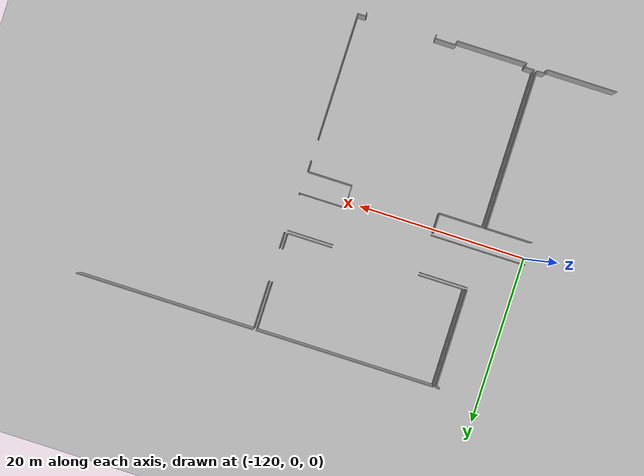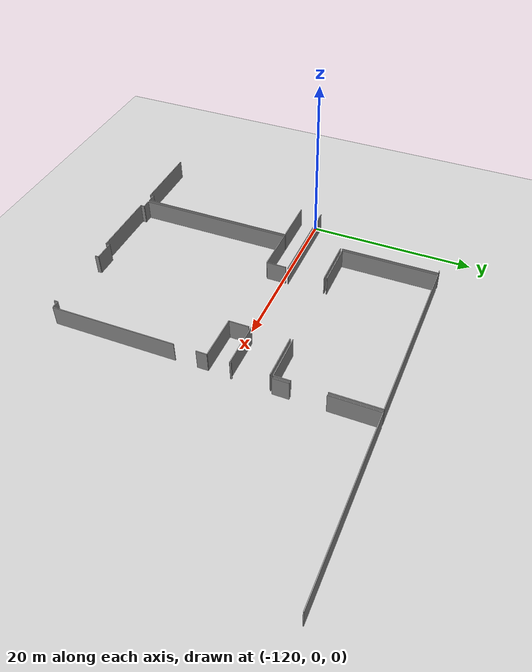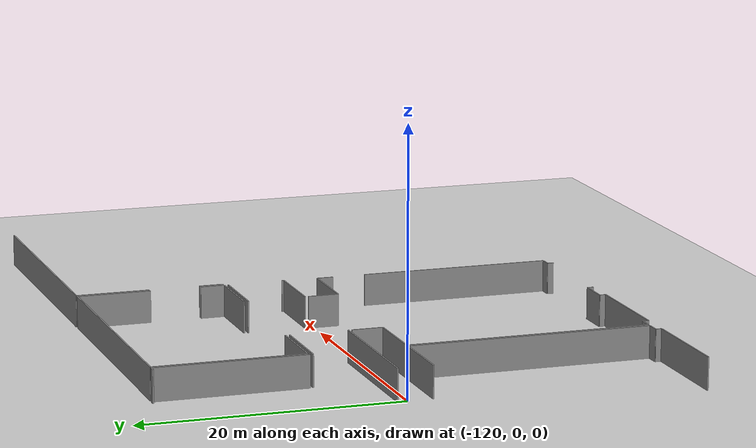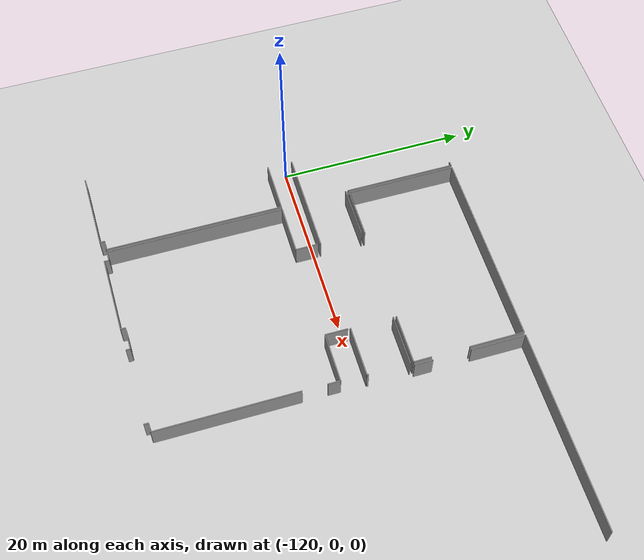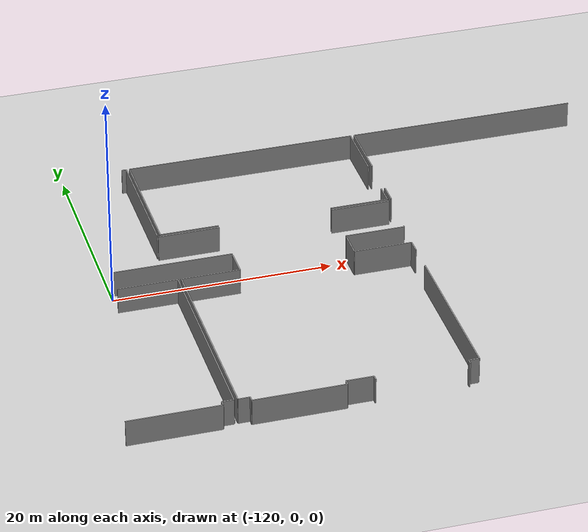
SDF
<sdf version="1.6">
 <world name="default">
  <model name="ground_plane">
   <static>1</static>
   <link name="link">
    <collision name="collision">
     <geometry><plane><normal>0 0 1</normal><size>100 100</size></plane></geometry>
     <surface><friction><ode><mu>100</mu><mu2>50</mu2></ode></friction></surface>
    </collision>
    <visual name="visual">
     <cast_shadows>0</cast_shadows>
     <geometry><plane><normal>0 0 1</normal><size>100 100</size></plane></geometry>
     <material>
      <script><uri>file://media/materials/scripts/gazebo.material</uri><name>Gazebo/Grey</name></script>
     </material>
    </visual>
   </link>
  </model>
  <model name="50037764_PLAN2">
   <static>1</static>
   <link name="Wall_7">
    <collision name="Wall_7_Collision">
     <geometry><box><size>0.447912959479 0.1 2.5</size></box></geometry>
     <pose>0.22395647974 0 1.25 0 0 0</pose>
    </collision>
    <visual name="Wall_7_Visual">
     <pose>0.22395647974 0 1.25 0 0 0</pose>
     <geometry><box><size>0.447912959479 0.1 2.5</size></box></geometry>
     <material>
      <script><uri>file://media/materials/scripts/gazebo.material</uri><name>Gazebo/Grey</name></script>
      <ambient>1 1 1 1</ambient>
     </material>
    </visual>
    <pose>20.7813818699 -4.12232446998 0 0 0 0.0</pose>
   </link>
   <link name="Wall_8">
    <collision name="Wall_8_Collision">
     <geometry><box><size>11.7359086198 0.1 2.5</size></box></geometry>
     <pose>5.86795430989 0 1.25 0 0 0</pose>
    </collision>
    <visual name="Wall_8_Visual">
     <pose>5.86795430989 0 1.25 0 0 0</pose>
     <geometry><box><size>11.7359086198 0.1 2.5</size></box></geometry>
     <material>
      <script><uri>file://media/materials/scripts/gazebo.material</uri><name>Gazebo/Grey</name></script>
      <ambient>1 1 1 1</ambient>
     </material>
    </visual>
    <pose>21.2292948294 -4.12232446998 0 0 0 -1.56992990164</pose>
   </link>
   <link name="Wall_9">
    <collision name="Wall_9_Collision">
     <geometry><box><size>5.38512379887 0.1 2.5</size></box></geometry>
     <pose>2.69256189944 0 1.25 0 0 0</pose>
    </collision>
    <visual name="Wall_9_Visual">
     <pose>2.69256189944 0 1.25 0 0 0</pose>
     <geometry><box><size>5.38512379887 0.1 2.5</size></box></geometry>
     <material>
      <script><uri>file://media/materials/scripts/gazebo.material</uri><name>Gazebo/Grey</name></script>
      <ambient>1 1 1 1</ambient>
     </material>
    </visual>
    <pose>42.8457979562 -15.7668158015 0 0 0 3.14159265359</pose>
   </link>
   <link name="Wall_10">
    <collision name="Wall_10_Collision">
     <geometry><box><size>5.39605470537 0.1 2.5</size></box></geometry>
     <pose>2.69802735269 0 1.25 0 0 0</pose>
    </collision>
    <visual name="Wall_10_Visual">
     <pose>2.69802735269 0 1.25 0 0 0</pose>
     <geometry><box><size>5.39605470537 0.1 2.5</size></box></geometry>
     <material>
      <script><uri>file://media/materials/scripts/gazebo.material</uri><name>Gazebo/Grey</name></script>
      <ambient>1 1 1 1</ambient>
     </material>
    </visual>
    <pose>26.9283644313 -15.7668158015 0 0 0 3.14159265359</pose>
   </link>
   <link name="Wall_11">
    <collision name="Wall_11_Collision">
     <geometry><box><size>11.6444913315 0.1 2.5</size></box></geometry>
     <pose>5.82224566577 0 1.25 0 0 0</pose>
    </collision>
    <visual name="Wall_11_Visual">
     <pose>5.82224566577 0 1.25 0 0 0</pose>
     <geometry><box><size>11.6444913315 0.1 2.5</size></box></geometry>
     <material>
      <script><uri>file://media/materials/scripts/gazebo.material</uri><name>Gazebo/Grey</name></script>
      <ambient>1 1 1 1</ambient>
     </material>
    </visual>
    <pose>21.532309726 -15.7668158015 0 0 0 1.57079632679</pose>
   </link>
   <link name="Wall_12">
    <collision name="Wall_12_Collision">
     <geometry><box><size>21.299252631 0.1 2.5</size></box></geometry>
     <pose>10.6496263155 0 1.25 0 0 0</pose>
    </collision>
    <visual name="Wall_12_Visual">
     <pose>10.6496263155 0 1.25 0 0 0</pose>
     <geometry><box><size>21.299252631 0.1 2.5</size></box></geometry>
     <material>
      <script><uri>file://media/materials/scripts/gazebo.material</uri><name>Gazebo/Grey</name></script>
      <ambient>1 1 1 1</ambient>
     </material>
    </visual>
    <pose>21.532309726 -4.12232446998 0 0 0 0.0</pose>
   </link>
   <link name="Wall_13">
    <collision name="Wall_13_Collision">
     <geometry><box><size>5.75115664243 0.1 2.5</size></box></geometry>
     <pose>2.87557832122 0 1.25 0 0 0</pose>
    </collision>
    <visual name="Wall_13_Visual">
     <pose>2.87557832122 0 1.25 0 0 0</pose>
     <geometry><box><size>5.75115664243 0.1 2.5</size></box></geometry>
     <material>
      <script><uri>file://media/materials/scripts/gazebo.material</uri><name>Gazebo/Grey</name></script>
      <ambient>1 1 1 1</ambient>
     </material>
    </visual>
    <pose>42.831562357 -4.12232446998 0 0 0 -1.57079632679</pose>
   </link>
   <link name="Wall_14">
    <collision name="Wall_14_Collision">
     <geometry><box><size>1.90637782522 0.1 2.5</size></box></geometry>
     <pose>0.953188912609 0 1.25 0 0 0</pose>
    </collision>
    <visual name="Wall_14_Visual">
     <pose>0.953188912609 0 1.25 0 0 0</pose>
     <geometry><box><size>1.90637782522 0.1 2.5</size></box></geometry>
     <material>
      <script><uri>file://media/materials/scripts/gazebo.material</uri><name>Gazebo/Grey</name></script>
      <ambient>1 1 1 1</ambient>
     </material>
    </visual>
    <pose>42.831562357 -13.8604911282 0 0 0 -1.56332890282</pose>
   </link>
   <link name="Wall_15">
    <collision name="Wall_15_Collision">
     <geometry><box><size>5.45477655193 0.1 2.5</size></box></geometry>
     <pose>2.72738827597 0 1.25 0 0 0</pose>
    </collision>
    <visual name="Wall_15_Visual">
     <pose>2.72738827597 0 1.25 0 0 0</pose>
     <geometry><box><size>5.45477655193 0.1 2.5</size></box></geometry>
     <material>
      <script><uri>file://media/materials/scripts/gazebo.material</uri><name>Gazebo/Grey</name></script>
      <ambient>1 1 1 1</ambient>
     </material>
    </visual>
    <pose>42.8989272459 -20.595861508 0 0 0 3.14159265359</pose>
   </link>
   <link name="Wall_16">
    <collision name="Wall_16_Collision">
     <geometry><box><size>11.1444913315 0.1 2.5</size></box></geometry>
     <pose>5.57224566577 0 1.25 0 0 0</pose>
    </collision>
    <visual name="Wall_16_Visual">
     <pose>5.57224566577 0 1.25 0 0 0</pose>
     <geometry><box><size>11.1444913315 0.1 2.5</size></box></geometry>
     <material>
      <script><uri>file://media/materials/scripts/gazebo.material</uri><name>Gazebo/Grey</name></script>
      <ambient>1 1 1 1</ambient>
     </material>
    </visual>
    <pose>26.9309065026 -20.595861508 0 0 0 3.14159265359</pose>
   </link>
   <link name="Wall_22">
    <collision name="Wall_22_Collision">
     <geometry><box><size>5.65737963292 0.1 2.5</size></box></geometry>
     <pose>2.82868981646 0 1.25 0 0 0</pose>
    </collision>
    <visual name="Wall_22_Visual">
     <pose>2.82868981646 0 1.25 0 0 0</pose>
     <geometry><box><size>5.65737963292 0.1 2.5</size></box></geometry>
     <material>
      <script><uri>file://media/materials/scripts/gazebo.material</uri><name>Gazebo/Grey</name></script>
      <ambient>1 1 1 1</ambient>
     </material>
    </visual>
    <pose>21.2623417561 -16.0900910062 0 0 0 0.0</pose>
   </link>
   <link name="Wall_23">
    <collision name="Wall_23_Collision">
     <geometry><box><size>5.44892978799 0.1 2.5</size></box></geometry>
     <pose>2.724464894 0 1.25 0 0 0</pose>
    </collision>
    <visual name="Wall_23_Visual">
     <pose>2.724464894 0 1.25 0 0 0</pose>
     <geometry><box><size>5.44892978799 0.1 2.5</size></box></geometry>
     <material>
      <script><uri>file://media/materials/scripts/gazebo.material</uri><name>Gazebo/Grey</name></script>
      <ambient>1 1 1 1</ambient>
     </material>
    </visual>
    <pose>37.4494890437 -16.0900910062 0 0 0 0.0</pose>
   </link>
   <link name="Wall_24">
    <collision name="Wall_24_Collision">
     <geometry><box><size>0.182013013699 0.1 2.5</size></box></geometry>
     <pose>0.0910065068497 0 1.25 0 0 0</pose>
    </collision>
    <visual name="Wall_24_Visual">
     <pose>0.0910065068497 0 1.25 0 0 0</pose>
     <geometry><box><size>0.182013013699 0.1 2.5</size></box></geometry>
     <material>
      <script><uri>file://media/materials/scripts/gazebo.material</uri><name>Gazebo/Grey</name></script>
      <ambient>1 1 1 1</ambient>
     </material>
    </visual>
    <pose>42.8984188317 -20.4138492043 0 0 0 -1.56800303797</pose>
   </link>
   <link name="Wall_25">
    <collision name="Wall_25_Collision">
     <geometry><box><size>1.05063805989 0.1 2.5</size></box></geometry>
     <pose>0.525319029946 0 1.25 0 0 0</pose>
    </collision>
    <visual name="Wall_25_Visual">
     <pose>0.525319029946 0 1.25 0 0 0</pose>
     <geometry><box><size>1.05063805989 0.1 2.5</size></box></geometry>
     <material>
      <script><uri>file://media/materials/scripts/gazebo.material</uri><name>Gazebo/Grey</name></script>
      <ambient>1 1 1 1</ambient>
     </material>
    </visual>
    <pose>21.2394631145 -42.151354924 0 0 0 3.14159265359</pose>
   </link>
   <link name="Wall_26">
    <collision name="Wall_26_Collision">
     <geometry><box><size>0.471808429508 0.1 2.5</size></box></geometry>
     <pose>0.235904214754 0 1.25 0 0 0</pose>
    </collision>
    <visual name="Wall_26_Visual">
     <pose>0.235904214754 0 1.25 0 0 0</pose>
     <geometry><box><size>0.471808429508 0.1 2.5</size></box></geometry>
     <material>
      <script><uri>file://media/materials/scripts/gazebo.material</uri><name>Gazebo/Grey</name></script>
      <ambient>1 1 1 1</ambient>
     </material>
    </visual>
    <pose>20.1888250547 -42.151354924 0 0 0 -1.57079632679</pose>
   </link>
   <link name="Wall_27">
    <collision name="Wall_27_Collision">
     <geometry><box><size>8.38959784432 0.1 2.5</size></box></geometry>
     <pose>4.19479892216 0 1.25 0 0 0</pose>
    </collision>
    <visual name="Wall_27_Visual">
     <pose>4.19479892216 0 1.25 0 0 0</pose>
     <geometry><box><size>8.38959784432 0.1 2.5</size></box></geometry>
     <material>
      <script><uri>file://media/materials/scripts/gazebo.material</uri><name>Gazebo/Grey</name></script>
      <ambient>1 1 1 1</ambient>
     </material>
    </visual>
    <pose>20.1888250547 -42.6231633535 0 0 0 3.14159265359</pose>
   </link>
   <link name="Wall_34">
    <collision name="Wall_34_Collision">
     <geometry><box><size>5.47302862372 0.1 2.5</size></box></geometry>
     <pose>2.73651431186 0 1.25 0 0 0</pose>
    </collision>
    <visual name="Wall_34_Visual">
     <pose>2.73651431186 0 1.25 0 0 0</pose>
     <geometry><box><size>5.47302862372 0.1 2.5</size></box></geometry>
     <material>
      <script><uri>file://media/materials/scripts/gazebo.material</uri><name>Gazebo/Grey</name></script>
      <ambient>1 1 1 1</ambient>
     </material>
    </visual>
    <pose>15.7844831969 -23.2703747013 0 0 0 0.0</pose>
   </link>
   <link name="Wall_35">
    <collision name="Wall_35_Collision">
     <geometry><box><size>18.8809888492 0.1 2.5</size></box></geometry>
     <pose>9.44049442462 0 1.25 0 0 0</pose>
    </collision>
    <visual name="Wall_35_Visual">
     <pose>9.44049442462 0 1.25 0 0 0</pose>
     <geometry><box><size>18.8809888492 0.1 2.5</size></box></geometry>
     <material>
      <script><uri>file://media/materials/scripts/gazebo.material</uri><name>Gazebo/Grey</name></script>
      <ambient>1 1 1 1</ambient>
     </material>
    </visual>
    <pose>21.2575118206 -23.2703747013 0 0 0 -1.57175224648</pose>
   </link>
   <link name="Wall_53">
    <collision name="Wall_53_Collision">
     <geometry><box><size>0.954547765519 0.1 2.5</size></box></geometry>
     <pose>0.47727388276 0 1.25 0 0 0</pose>
    </collision>
    <visual name="Wall_53_Visual">
     <pose>0.47727388276 0 1.25 0 0 0</pose>
     <geometry><box><size>0.954547765519 0.1 2.5</size></box></geometry>
     <material>
      <script><uri>file://media/materials/scripts/gazebo.material</uri><name>Gazebo/Grey</name></script>
      <ambient>1 1 1 1</ambient>
     </material>
    </visual>
    <pose>42.7791956886 -42.151354924 0 0 0 3.14159265359</pose>
   </link>
   <link name="Wall_54">
    <collision name="Wall_54_Collision">
     <geometry><box><size>0.468503736845 0.1 2.5</size></box></geometry>
     <pose>0.234251868422 0 1.25 0 0 0</pose>
    </collision>
    <visual name="Wall_54_Visual">
     <pose>0.234251868422 0 1.25 0 0 0</pose>
     <geometry><box><size>0.468503736845 0.1 2.5</size></box></geometry>
     <material>
      <script><uri>file://media/materials/scripts/gazebo.material</uri><name>Gazebo/Grey</name></script>
      <ambient>1 1 1 1</ambient>
     </material>
    </visual>
    <pose>41.8246479231 -42.151354924 0 0 0 -1.57079632679</pose>
   </link>
   <link name="Wall_55">
    <collision name="Wall_55_Collision">
     <geometry><box><size>0.472062636636 0.1 2.5</size></box></geometry>
     <pose>0.236031318318 0 1.25 0 0 0</pose>
    </collision>
    <visual name="Wall_55_Visual">
     <pose>0.236031318318 0 1.25 0 0 0</pose>
     <geometry><box><size>0.472062636636 0.1 2.5</size></box></geometry>
     <material>
      <script><uri>file://media/materials/scripts/gazebo.material</uri><name>Gazebo/Grey</name></script>
      <ambient>1 1 1 1</ambient>
     </material>
    </visual>
    <pose>33.4525903706 -42.6198586608 0 0 0 1.57079632679</pose>
   </link>
   <link name="Wall_56">
    <collision name="Wall_56_Collision">
     <geometry><box><size>2.47546901215 0.1 2.5</size></box></geometry>
     <pose>1.23773450608 0 1.25 0 0 0</pose>
    </collision>
    <visual name="Wall_56_Visual">
     <pose>1.23773450608 0 1.25 0 0 0</pose>
     <geometry><box><size>2.47546901215 0.1 2.5</size></box></geometry>
     <material>
      <script><uri>file://media/materials/scripts/gazebo.material</uri><name>Gazebo/Grey</name></script>
      <ambient>1 1 1 1</ambient>
     </material>
    </visual>
    <pose>33.4525903706 -42.1477960242 0 0 0 3.14159265359</pose>
   </link>
   <link name="Wall_57">
    <collision name="Wall_57_Collision">
     <geometry><box><size>0.489348721338 0.1 2.5</size></box></geometry>
     <pose>0.244674360669 0 1.25 0 0 0</pose>
    </collision>
    <visual name="Wall_57_Visual">
     <pose>0.244674360669 0 1.25 0 0 0</pose>
     <geometry><box><size>0.489348721338 0.1 2.5</size></box></geometry>
     <material>
      <script><uri>file://media/materials/scripts/gazebo.material</uri><name>Gazebo/Grey</name></script>
      <ambient>1 1 1 1</ambient>
     </material>
    </visual>
    <pose>30.9771213585 -42.1477960242 0 0 0 -1.57079632679</pose>
   </link>
   <link name="Wall_58">
    <collision name="Wall_58_Collision">
     <geometry><box><size>8.34155269714 0.1 2.5</size></box></geometry>
     <pose>4.17077634857 0 1.25 0 0 0</pose>
    </collision>
    <visual name="Wall_58_Visual">
     <pose>4.17077634857 0 1.25 0 0 0</pose>
     <geometry><box><size>8.34155269714 0.1 2.5</size></box></geometry>
     <material>
      <script><uri>file://media/materials/scripts/gazebo.material</uri><name>Gazebo/Grey</name></script>
      <ambient>1 1 1 1</ambient>
     </material>
    </visual>
    <pose>30.9771213585 -42.6371447455 0 0 0 3.14159265359</pose>
   </link>
   <link name="Wall_59">
    <collision name="Wall_59_Collision">
     <geometry><box><size>0.485789821547 0.1 2.5</size></box></geometry>
     <pose>0.242894910773 0 1.25 0 0 0</pose>
    </collision>
    <visual name="Wall_59_Visual">
     <pose>0.242894910773 0 1.25 0 0 0</pose>
     <geometry><box><size>0.485789821547 0.1 2.5</size></box></geometry>
     <material>
      <script><uri>file://media/materials/scripts/gazebo.material</uri><name>Gazebo/Grey</name></script>
      <ambient>1 1 1 1</ambient>
     </material>
    </visual>
    <pose>22.6355686613 -42.6371447455 0 0 0 1.57079632679</pose>
   </link>
   <link name="Wall_60">
    <collision name="Wall_60_Collision">
     <geometry><box><size>1.07199145864 0.1 2.5</size></box></geometry>
     <pose>0.53599572932 0 1.25 0 0 0</pose>
    </collision>
    <visual name="Wall_60_Visual">
     <pose>0.53599572932 0 1.25 0 0 0</pose>
     <geometry><box><size>1.07199145864 0.1 2.5</size></box></geometry>
     <material>
      <script><uri>file://media/materials/scripts/gazebo.material</uri><name>Gazebo/Grey</name></script>
      <ambient>1 1 1 1</ambient>
     </material>
    </visual>
    <pose>22.6355686613 -42.151354924 0 0 0 3.14159265359</pose>
   </link>
   <link name="Wall_61">
    <collision name="Wall_61_Collision">
     <geometry><box><size>18.879709187 0.1 2.5</size></box></geometry>
     <pose>9.43985459352 0 1.25 0 0 0</pose>
    </collision>
    <visual name="Wall_61_Visual">
     <pose>9.43985459352 0 1.25 0 0 0</pose>
     <geometry><box><size>18.879709187 0.1 2.5</size></box></geometry>
     <material>
      <script><uri>file://media/materials/scripts/gazebo.material</uri><name>Gazebo/Grey</name></script>
      <ambient>1 1 1 1</ambient>
     </material>
    </visual>
    <pose>21.5635772027 -42.151354924 0 0 0 1.57079632679</pose>
   </link>
   <link name="Wall_62">
    <collision name="Wall_62_Collision">
     <geometry><box><size>5.33097768061 0.1 2.5</size></box></geometry>
     <pose>2.66548884031 0 1.25 0 0 0</pose>
    </collision>
    <visual name="Wall_62_Visual">
     <pose>2.66548884031 0 1.25 0 0 0</pose>
     <geometry><box><size>5.33097768061 0.1 2.5</size></box></geometry>
     <material>
      <script><uri>file://media/materials/scripts/gazebo.material</uri><name>Gazebo/Grey</name></script>
      <ambient>1 1 1 1</ambient>
     </material>
    </visual>
    <pose>21.5635772027 -23.2716457369 0 0 0 0.0</pose>
   </link>
   <link name="Wall_63">
    <collision name="Wall_63_Collision">
     <geometry><box><size>2.40810412324 0.1 2.5</size></box></geometry>
     <pose>1.20405206162 0 1.25 0 0 0</pose>
    </collision>
    <visual name="Wall_63_Visual">
     <pose>1.20405206162 0 1.25 0 0 0</pose>
     <geometry><box><size>2.40810412324 0.1 2.5</size></box></geometry>
     <material>
      <script><uri>file://media/materials/scripts/gazebo.material</uri><name>Gazebo/Grey</name></script>
      <ambient>1 1 1 1</ambient>
     </material>
    </visual>
    <pose>26.8945548833 -23.2716457369 0 0 0 1.57079632679</pose>
   </link>
   <link name="Wall_64">
    <collision name="Wall_64_Collision">
     <geometry><box><size>2.39107224567 0.1 2.5</size></box></geometry>
     <pose>1.19553612283 0 1.25 0 0 0</pose>
    </collision>
    <visual name="Wall_64_Visual">
     <pose>1.19553612283 0 1.25 0 0 0</pose>
     <geometry><box><size>2.39107224567 0.1 2.5</size></box></geometry>
     <material>
      <script><uri>file://media/materials/scripts/gazebo.material</uri><name>Gazebo/Grey</name></script>
      <ambient>1 1 1 1</ambient>
     </material>
    </visual>
    <pose>37.4357618588 -20.8635416137 0 0 0 -1.57079632679</pose>
   </link>
   <link name="Wall_65">
    <collision name="Wall_65_Collision">
     <geometry><box><size>5.32462250241 0.1 2.5</size></box></geometry>
     <pose>2.66231125121 0 1.25 0 0 0</pose>
    </collision>
    <visual name="Wall_65_Visual">
     <pose>2.66231125121 0 1.25 0 0 0</pose>
     <geometry><box><size>5.32462250241 0.1 2.5</size></box></geometry>
     <material>
      <script><uri>file://media/materials/scripts/gazebo.material</uri><name>Gazebo/Grey</name></script>
      <ambient>1 1 1 1</ambient>
     </material>
    </visual>
    <pose>37.4357618588 -23.2546138594 0 0 0 0.0</pose>
   </link>
   <link name="Wall_66">
    <collision name="Wall_66_Collision">
     <geometry><box><size>1.28959276018 0.1 2.5</size></box></geometry>
     <pose>0.64479638009 0 1.25 0 0 0</pose>
    </collision>
    <visual name="Wall_66_Visual">
     <pose>0.64479638009 0 1.25 0 0 0</pose>
     <geometry><box><size>1.28959276018 0.1 2.5</size></box></geometry>
     <material>
      <script><uri>file://media/materials/scripts/gazebo.material</uri><name>Gazebo/Grey</name></script>
      <ambient>1 1 1 1</ambient>
     </material>
    </visual>
    <pose>42.7603843612 -23.2546138594 0 0 0 -1.57079632679</pose>
   </link>
   <link name="Wall_67">
    <collision name="Wall_67_Collision">
     <geometry><box><size>15.0071295895 0.1 2.5</size></box></geometry>
     <pose>7.50356479476 0 1.25 0 0 0</pose>
    </collision>
    <visual name="Wall_67_Visual">
     <pose>7.50356479476 0 1.25 0 0 0</pose>
     <geometry><box><size>15.0071295895 0.1 2.5</size></box></geometry>
     <material>
      <script><uri>file://media/materials/scripts/gazebo.material</uri><name>Gazebo/Grey</name></script>
      <ambient>1 1 1 1</ambient>
     </material>
    </visual>
    <pose>42.7603843612 -27.1442371244 0 0 0 -1.56954283376</pose>
   </link>
   <link name="Wall_76">
    <collision name="Wall_76_Collision">
     <geometry><box><size>1.9272967614 0.1 2.5</size></box></geometry>
     <pose>0.963648380701 0 1.25 0 0 0</pose>
    </collision>
    <visual name="Wall_76_Visual">
     <pose>0.963648380701 0 1.25 0 0 0</pose>
     <geometry><box><size>1.9272967614 0.1 2.5</size></box></geometry>
     <material>
      <script><uri>file://media/materials/scripts/gazebo.material</uri><name>Gazebo/Grey</name></script>
      <ambient>1 1 1 1</ambient>
     </material>
    </visual>
    <pose>43.1859270934 -15.7861355432 0 0 0 1.57079632679</pose>
   </link>
   <link name="Wall_77">
    <collision name="Wall_77_Collision">
     <geometry><box><size>5.75560526717 0.1 2.5</size></box></geometry>
     <pose>2.87780263359 0 1.25 0 0 0</pose>
    </collision>
    <visual name="Wall_77_Visual">
     <pose>2.87780263359 0 1.25 0 0 0</pose>
     <geometry><box><size>5.75560526717 0.1 2.5</size></box></geometry>
     <material>
      <script><uri>file://media/materials/scripts/gazebo.material</uri><name>Gazebo/Grey</name></script>
      <ambient>1 1 1 1</ambient>
     </material>
    </visual>
    <pose>43.1859270934 -9.86188926738 0 0 0 1.57079632679</pose>
   </link>
   <link name="Wall_78">
    <collision name="Wall_78_Collision">
     <geometry><box><size>21.2720524684 0.1 2.5</size></box></geometry>
     <pose>10.6360262342 0 1.25 0 0 0</pose>
    </collision>
    <visual name="Wall_78_Visual">
     <pose>10.6360262342 0 1.25 0 0 0</pose>
     <geometry><box><size>21.2720524684 0.1 2.5</size></box></geometry>
     <material>
      <script><uri>file://media/materials/scripts/gazebo.material</uri><name>Gazebo/Grey</name></script>
      <ambient>1 1 1 1</ambient>
     </material>
    </visual>
    <pose>43.1859270934 -4.1062840002 0 0 0 0.0</pose>
   </link>
   <pose>-135.8 21.3069729015 0 0 0 0</pose>
  </model>
 </world>
</sdf>
